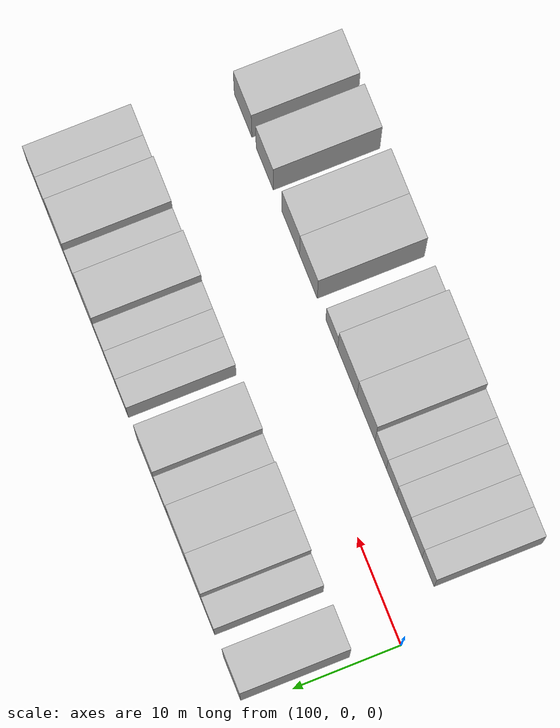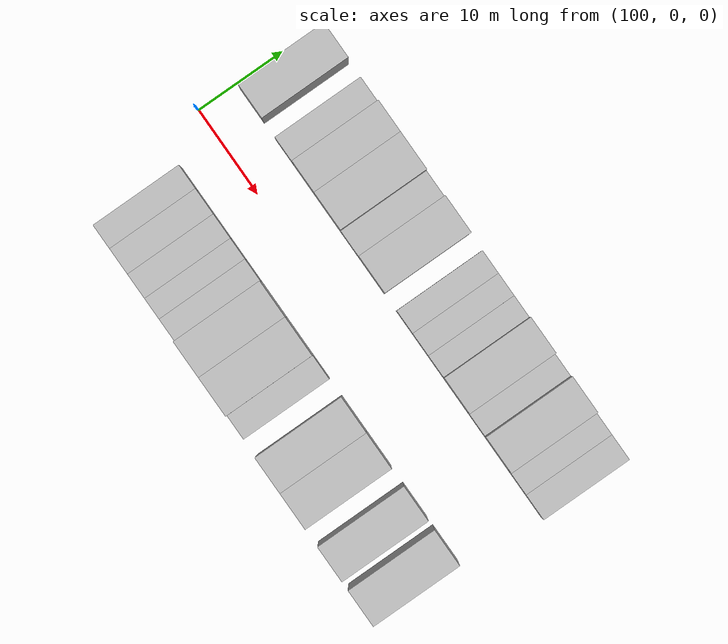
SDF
<sdf version="1.6">
 <world name="default">
  <model name="building_25">
   <static>1</static>
   <pose>102.7310 9.5000 0 0.000000 0.000000 1.570796</pose>
   <link name="link">
    <pose>0 0 4.50 0 0 0</pose>
    <collision name="collision"><geometry><box><size>10.0000 4.0255 9.0000</size></box></geometry></collision>
    <visual name="visual">
     <cast_shadows>0</cast_shadows>
     <geometry><box><size>10.0000 4.0255 9.0000</size></box></geometry>
     <material>
      <script>
       <uri>model://HANNAS_wall/materials/scripts</uri>
       <uri>model://HANNAS_wall/materials/textures</uri>
       <name>vrc/HANNAS_wall</name>
      </script>
     </material>
    </visual>
   </link>
  </model>
  <model name="building_26">
   <static>1</static>
   <pose>108.1972 9.5000 0 0.000000 0.000000 1.570796</pose>
   <link name="link">
    <pose>0 0 3.00 0 0 0</pose>
    <collision name="collision"><geometry><box><size>10.0000 2.9069 6.0000</size></box></geometry></collision>
    <visual name="visual">
     <cast_shadows>0</cast_shadows>
     <geometry><box><size>10.0000 2.9069 6.0000</size></box></geometry>
     <material>
      <script>
       <uri>model://HANNAS_wall/materials/scripts</uri>
       <uri>model://HANNAS_wall/materials/textures</uri>
       <name>vrc/HANNAS_wall</name>
      </script>
     </material>
    </visual>
   </link>
  </model>
  <model name="building_27">
   <static>1</static>
   <pose>111.4768 9.5000 0 0.000000 0.000000 1.570796</pose>
   <link name="link">
    <pose>0 0 4.50 0 0 0</pose>
    <collision name="collision"><geometry><box><size>10.0000 3.6522 9.0000</size></box></geometry></collision>
    <visual name="visual">
     <cast_shadows>0</cast_shadows>
     <geometry><box><size>10.0000 3.6522 9.0000</size></box></geometry>
     <material>
      <script>
       <uri>model://HANNAS_wall/materials/scripts</uri>
       <uri>model://HANNAS_wall/materials/textures</uri>
       <name>vrc/HANNAS_wall</name>
      </script>
     </material>
    </visual>
   </link>
  </model>
  <model name="building_28">
   <static>1</static>
   <pose>115.4859 9.5000 0 0.000000 0.000000 1.570796</pose>
   <link name="link">
    <pose>0 0 4.50 0 0 0</pose>
    <collision name="collision"><geometry><box><size>10.0000 4.3660 9.0000</size></box></geometry></collision>
    <visual name="visual">
     <cast_shadows>0</cast_shadows>
     <geometry><box><size>10.0000 4.3660 9.0000</size></box></geometry>
     <material>
      <script>
       <uri>model://HANNAS_wall/materials/scripts</uri>
       <uri>model://HANNAS_wall/materials/textures</uri>
       <name>vrc/HANNAS_wall</name>
      </script>
     </material>
    </visual>
   </link>
  </model>
  <model name="building_29">
   <static>1</static>
   <pose>119.1669 9.5000 0 0.000000 0.000000 1.570796</pose>
   <link name="link">
    <pose>0 0 3.00 0 0 0</pose>
    <collision name="collision"><geometry><box><size>10.0000 2.9960 6.0000</size></box></geometry></collision>
    <visual name="visual">
     <cast_shadows>0</cast_shadows>
     <geometry><box><size>10.0000 2.9960 6.0000</size></box></geometry>
     <material>
      <script>
       <uri>model://HANNAS_wall/materials/scripts</uri>
       <uri>model://HANNAS_wall/materials/textures</uri>
       <name>vrc/HANNAS_wall</name>
      </script>
     </material>
    </visual>
   </link>
  </model>
  <model name="building_30">
   <static>1</static>
   <pose>122.8163 9.5000 0 0.000000 0.000000 1.570796</pose>
   <link name="link">
    <pose>0 0 4.50 0 0 0</pose>
    <collision name="collision"><geometry><box><size>10.0000 4.3029 9.0000</size></box></geometry></collision>
    <visual name="visual">
     <cast_shadows>0</cast_shadows>
     <geometry><box><size>10.0000 4.3029 9.0000</size></box></geometry>
     <material>
      <script>
       <uri>model://HANNAS_wall/materials/scripts</uri>
       <uri>model://HANNAS_wall/materials/textures</uri>
       <name>vrc/HANNAS_wall</name>
      </script>
     </material>
    </visual>
   </link>
  </model>
  <model name="building_31">
   <static>1</static>
   <pose>128.2900 9.5000 0 0.000000 0.000000 1.570796</pose>
   <link name="link">
    <pose>0 0 3.00 0 0 0</pose>
    <collision name="collision"><geometry><box><size>10.0000 2.6445 6.0000</size></box></geometry></collision>
    <visual name="visual">
     <cast_shadows>0</cast_shadows>
     <geometry><box><size>10.0000 2.6445 6.0000</size></box></geometry>
     <material>
      <script>
       <uri>model://HANNAS_wall/materials/scripts</uri>
       <uri>model://HANNAS_wall/materials/textures</uri>
       <name>vrc/HANNAS_wall</name>
      </script>
     </material>
    </visual>
   </link>
  </model>
  <model name="building_32">
   <static>1</static>
   <pose>130.9138 9.5000 0 0.000000 0.000000 1.570796</pose>
   <link name="link">
    <pose>0 0 3.00 0 0 0</pose>
    <collision name="collision"><geometry><box><size>10.0000 2.6032 6.0000</size></box></geometry></collision>
    <visual name="visual">
     <cast_shadows>0</cast_shadows>
     <geometry><box><size>10.0000 2.6032 6.0000</size></box></geometry>
     <material>
      <script>
       <uri>model://HANNAS_wall/materials/scripts</uri>
       <uri>model://HANNAS_wall/materials/textures</uri>
       <name>vrc/HANNAS_wall</name>
      </script>
     </material>
    </visual>
   </link>
  </model>
  <model name="building_33">
   <static>1</static>
   <pose>133.4802 9.5000 0 0.000000 0.000000 1.570796</pose>
   <link name="link">
    <pose>0 0 3.00 0 0 0</pose>
    <collision name="collision"><geometry><box><size>10.0000 2.5295 6.0000</size></box></geometry></collision>
    <visual name="visual">
     <cast_shadows>0</cast_shadows>
     <geometry><box><size>10.0000 2.5295 6.0000</size></box></geometry>
     <material>
      <script>
       <uri>model://HANNAS_wall/materials/scripts</uri>
       <uri>model://HANNAS_wall/materials/textures</uri>
       <name>vrc/HANNAS_wall</name>
      </script>
     </material>
    </visual>
   </link>
  </model>
  <model name="building_34">
   <static>1</static>
   <pose>136.8274 9.5000 0 0.000000 0.000000 1.570796</pose>
   <link name="link">
    <pose>0 0 4.50 0 0 0</pose>
    <collision name="collision"><geometry><box><size>10.0000 4.1649 9.0000</size></box></geometry></collision>
    <visual name="visual">
     <cast_shadows>0</cast_shadows>
     <geometry><box><size>10.0000 4.1649 9.0000</size></box></geometry>
     <material>
      <script>
       <uri>model://HANNAS_wall/materials/scripts</uri>
       <uri>model://HANNAS_wall/materials/textures</uri>
       <name>vrc/HANNAS_wall</name>
      </script>
     </material>
    </visual>
   </link>
  </model>
  <model name="building_35">
   <static>1</static>
   <pose>140.2510 9.5000 0 0.000000 0.000000 1.570796</pose>
   <link name="link">
    <pose>0 0 3.00 0 0 0</pose>
    <collision name="collision"><geometry><box><size>10.0000 2.6823 6.0000</size></box></geometry></collision>
    <visual name="visual">
     <cast_shadows>0</cast_shadows>
     <geometry><box><size>10.0000 2.6823 6.0000</size></box></geometry>
     <material>
      <script>
       <uri>model://HANNAS_wall/materials/scripts</uri>
       <uri>model://HANNAS_wall/materials/textures</uri>
       <name>vrc/HANNAS_wall</name>
      </script>
     </material>
    </visual>
   </link>
  </model>
  <model name="building_36">
   <static>1</static>
   <pose>143.6813 9.5000 0 0.000000 0.000000 1.570796</pose>
   <link name="link">
    <pose>0 0 4.50 0 0 0</pose>
    <collision name="collision"><geometry><box><size>10.0000 4.1784 9.0000</size></box></geometry></collision>
    <visual name="visual">
     <cast_shadows>0</cast_shadows>
     <geometry><box><size>10.0000 4.1784 9.0000</size></box></geometry>
     <material>
      <script>
       <uri>model://HANNAS_wall/materials/scripts</uri>
       <uri>model://HANNAS_wall/materials/textures</uri>
       <name>vrc/HANNAS_wall</name>
      </script>
     </material>
    </visual>
   </link>
  </model>
  <model name="building_37">
   <static>1</static>
   <pose>147.1020 9.5000 0 0.000000 0.000000 1.570796</pose>
   <link name="link">
    <pose>0 0 3.00 0 0 0</pose>
    <collision name="collision"><geometry><box><size>10.0000 2.6631 6.0000</size></box></geometry></collision>
    <visual name="visual">
     <cast_shadows>0</cast_shadows>
     <geometry><box><size>10.0000 2.6631 6.0000</size></box></geometry>
     <material>
      <script>
       <uri>model://HANNAS_wall/materials/scripts</uri>
       <uri>model://HANNAS_wall/materials/textures</uri>
       <name>vrc/HANNAS_wall</name>
      </script>
     </material>
    </visual>
   </link>
  </model>
  <model name="building_38">
   <static>1</static>
   <pose>149.8932 9.5000 0 0.000000 0.000000 1.570796</pose>
   <link name="link">
    <pose>0 0 3.00 0 0 0</pose>
    <collision name="collision"><geometry><box><size>10.0000 2.9192 6.0000</size></box></geometry></collision>
    <visual name="visual">
     <cast_shadows>0</cast_shadows>
     <geometry><box><size>10.0000 2.9192 6.0000</size></box></geometry>
     <material>
      <script>
       <uri>model://HANNAS_wall/materials/scripts</uri>
       <uri>model://HANNAS_wall/materials/textures</uri>
       <name>vrc/HANNAS_wall</name>
      </script>
     </material>
    </visual>
   </link>
  </model>
  <model name="building_80">
   <static>1</static>
   <pose>105.0120 -9.5000 0 0.000000 0.000000 1.570796</pose>
   <link name="link">
    <pose>0 0 3.00 0 0 0</pose>
    <collision name="collision"><geometry><box><size>10.0000 2.7402 6.0000</size></box></geometry></collision>
    <visual name="visual">
     <cast_shadows>0</cast_shadows>
     <geometry><box><size>10.0000 2.7402 6.0000</size></box></geometry>
     <material>
      <script>
       <uri>model://HANNAS_wall/materials/scripts</uri>
       <uri>model://HANNAS_wall/materials/textures</uri>
       <name>vrc/HANNAS_wall</name>
      </script>
     </material>
    </visual>
   </link>
  </model>
  <model name="building_81">
   <static>1</static>
   <pose>107.8663 -9.5000 0 0.000000 0.000000 1.570796</pose>
   <link name="link">
    <pose>0 0 3.00 0 0 0</pose>
    <collision name="collision"><geometry><box><size>10.0000 2.9685 6.0000</size></box></geometry></collision>
    <visual name="visual">
     <cast_shadows>0</cast_shadows>
     <geometry><box><size>10.0000 2.9685 6.0000</size></box></geometry>
     <material>
      <script>
       <uri>model://HANNAS_wall/materials/scripts</uri>
       <uri>model://HANNAS_wall/materials/textures</uri>
       <name>vrc/HANNAS_wall</name>
      </script>
     </material>
    </visual>
   </link>
  </model>
  <model name="building_82">
   <static>1</static>
   <pose>110.7672 -9.5000 0 0.000000 0.000000 1.570796</pose>
   <link name="link">
    <pose>0 0 3.00 0 0 0</pose>
    <collision name="collision"><geometry><box><size>10.0000 2.8331 6.0000</size></box></geometry></collision>
    <visual name="visual">
     <cast_shadows>0</cast_shadows>
     <geometry><box><size>10.0000 2.8331 6.0000</size></box></geometry>
     <material>
      <script>
       <uri>model://HANNAS_wall/materials/scripts</uri>
       <uri>model://HANNAS_wall/materials/textures</uri>
       <name>vrc/HANNAS_wall</name>
      </script>
     </material>
    </visual>
   </link>
  </model>
  <model name="building_83">
   <static>1</static>
   <pose>113.3900 -9.5000 0 0.000000 0.000000 1.570796</pose>
   <link name="link">
    <pose>0 0 3.00 0 0 0</pose>
    <collision name="collision"><geometry><box><size>10.0000 2.4126 6.0000</size></box></geometry></collision>
    <visual name="visual">
     <cast_shadows>0</cast_shadows>
     <geometry><box><size>10.0000 2.4126 6.0000</size></box></geometry>
     <material>
      <script>
       <uri>model://HANNAS_wall/materials/scripts</uri>
       <uri>model://HANNAS_wall/materials/textures</uri>
       <name>vrc/HANNAS_wall</name>
      </script>
     </material>
    </visual>
   </link>
  </model>
  <model name="building_84">
   <static>1</static>
   <pose>115.8952 -9.5000 0 0.000000 0.000000 1.570796</pose>
   <link name="link">
    <pose>0 0 3.00 0 0 0</pose>
    <collision name="collision"><geometry><box><size>10.0000 2.5978 6.0000</size></box></geometry></collision>
    <visual name="visual">
     <cast_shadows>0</cast_shadows>
     <geometry><box><size>10.0000 2.5978 6.0000</size></box></geometry>
     <material>
      <script>
       <uri>model://HANNAS_wall/materials/scripts</uri>
       <uri>model://HANNAS_wall/materials/textures</uri>
       <name>vrc/HANNAS_wall</name>
      </script>
     </material>
    </visual>
   </link>
  </model>
  <model name="building_85">
   <static>1</static>
   <pose>119.2780 -9.5000 0 0.000000 0.000000 1.570796</pose>
   <link name="link">
    <pose>0 0 4.50 0 0 0</pose>
    <collision name="collision"><geometry><box><size>10.0000 4.1677 9.0000</size></box></geometry></collision>
    <visual name="visual">
     <cast_shadows>0</cast_shadows>
     <geometry><box><size>10.0000 4.1677 9.0000</size></box></geometry>
     <material>
      <script>
       <uri>model://HANNAS_wall/materials/scripts</uri>
       <uri>model://HANNAS_wall/materials/textures</uri>
       <name>vrc/HANNAS_wall</name>
      </script>
     </material>
    </visual>
   </link>
  </model>
  <model name="building_86">
   <static>1</static>
   <pose>123.6017 -9.5000 0 0.000000 0.000000 1.570796</pose>
   <link name="link">
    <pose>0 0 4.50 0 0 0</pose>
    <collision name="collision"><geometry><box><size>10.0000 4.4798 9.0000</size></box></geometry></collision>
    <visual name="visual">
     <cast_shadows>0</cast_shadows>
     <geometry><box><size>10.0000 4.4798 9.0000</size></box></geometry>
     <material>
      <script>
       <uri>model://HANNAS_wall/materials/scripts</uri>
       <uri>model://HANNAS_wall/materials/textures</uri>
       <name>vrc/HANNAS_wall</name>
      </script>
     </material>
    </visual>
   </link>
  </model>
  <model name="building_87">
   <static>1</static>
   <pose>127.2268 -9.5000 0 0.000000 0.000000 1.570796</pose>
   <link name="link">
    <pose>0 0 3.00 0 0 0</pose>
    <collision name="collision"><geometry><box><size>10.0000 2.7704 6.0000</size></box></geometry></collision>
    <visual name="visual">
     <cast_shadows>0</cast_shadows>
     <geometry><box><size>10.0000 2.7704 6.0000</size></box></geometry>
     <material>
      <script>
       <uri>model://HANNAS_wall/materials/scripts</uri>
       <uri>model://HANNAS_wall/materials/textures</uri>
       <name>vrc/HANNAS_wall</name>
      </script>
     </material>
    </visual>
   </link>
  </model>
  <model name="building_88">
   <static>1</static>
   <pose>132.6841 -9.5000 0 0.000000 0.000000 1.570796</pose>
   <link name="link">
    <pose>0 0 4.50 0 0 0</pose>
    <collision name="collision"><geometry><box><size>10.0000 4.1442 9.0000</size></box></geometry></collision>
    <visual name="visual">
     <cast_shadows>0</cast_shadows>
     <geometry><box><size>10.0000 4.1442 9.0000</size></box></geometry>
     <material>
      <script>
       <uri>model://HANNAS_wall/materials/scripts</uri>
       <uri>model://HANNAS_wall/materials/textures</uri>
       <name>vrc/HANNAS_wall</name>
      </script>
     </material>
    </visual>
   </link>
  </model>
  <model name="building_89">
   <static>1</static>
   <pose>136.8383 -9.5000 0 0.000000 0.000000 1.570796</pose>
   <link name="link">
    <pose>0 0 4.50 0 0 0</pose>
    <collision name="collision"><geometry><box><size>10.0000 4.1642 9.0000</size></box></geometry></collision>
    <visual name="visual">
     <cast_shadows>0</cast_shadows>
     <geometry><box><size>10.0000 4.1642 9.0000</size></box></geometry>
     <material>
      <script>
       <uri>model://HANNAS_wall/materials/scripts</uri>
       <uri>model://HANNAS_wall/materials/textures</uri>
       <name>vrc/HANNAS_wall</name>
      </script>
     </material>
    </visual>
   </link>
  </model>
  <model name="building_90">
   <static>1</static>
   <pose>142.9406 -9.5000 0 0.000000 0.000000 1.570796</pose>
   <link name="link">
    <pose>0 0 4.50 0 0 0</pose>
    <collision name="collision"><geometry><box><size>10.0000 4.0405 9.0000</size></box></geometry></collision>
    <visual name="visual">
     <cast_shadows>0</cast_shadows>
     <geometry><box><size>10.0000 4.0405 9.0000</size></box></geometry>
     <material>
      <script>
       <uri>model://HANNAS_wall/materials/scripts</uri>
       <uri>model://HANNAS_wall/materials/textures</uri>
       <name>vrc/HANNAS_wall</name>
      </script>
     </material>
    </visual>
   </link>
  </model>
  <model name="building_91">
   <static>1</static>
   <pose>148.0404 -9.5000 0 0.000000 0.000000 1.570796</pose>
   <link name="link">
    <pose>0 0 4.50 0 0 0</pose>
    <collision name="collision"><geometry><box><size>10.0000 4.1589 9.0000</size></box></geometry></collision>
    <visual name="visual">
     <cast_shadows>0</cast_shadows>
     <geometry><box><size>10.0000 4.1589 9.0000</size></box></geometry>
     <material>
      <script>
       <uri>model://HANNAS_wall/materials/scripts</uri>
       <uri>model://HANNAS_wall/materials/textures</uri>
       <name>vrc/HANNAS_wall</name>
      </script>
     </material>
    </visual>
   </link>
  </model>
 </world>
</sdf>
